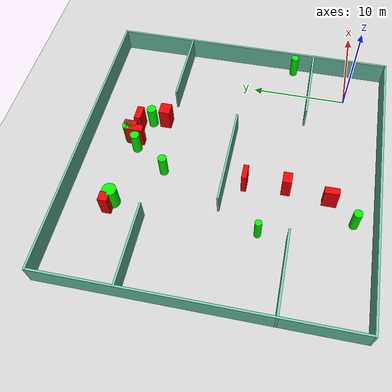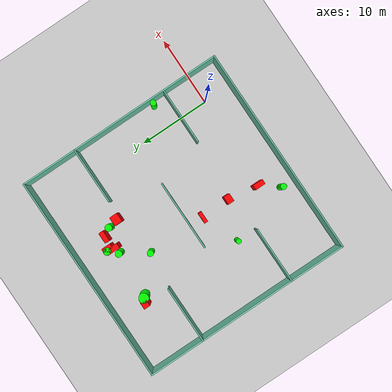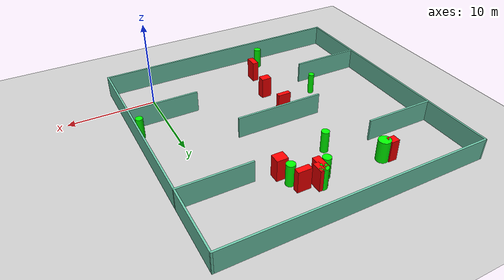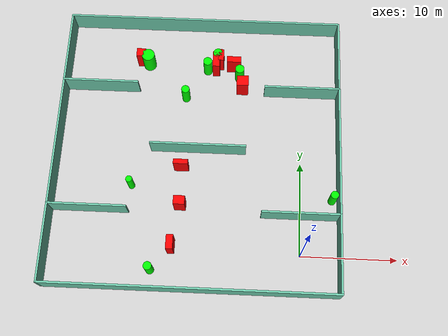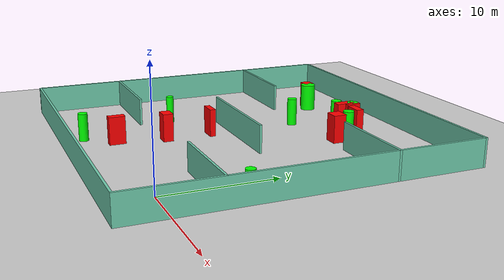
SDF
<sdf version="1.7">
 <world name="default">
  <light name="sun" type="directional">
   <pose>0 0 10 0 -0 0</pose>
   <diffuse>0.8 0.8 0.8 1</diffuse>
   <specular>0.2 0.2 0.2 1</specular>
   <attenuation>
    <range>1000</range>
    <constant>0.9</constant>
    <linear>0.01</linear>
    <quadratic>0.001</quadratic>
   </attenuation>
   <direction>-0.5 0.1 -0.9</direction>
   <spot><inner_angle>0</inner_angle><outer_angle>0</outer_angle><falloff>0</falloff></spot>
  </light>
  <model name="ground_plane">
   <static>1</static>
   <link name="link">
    <collision name="collision">
     <geometry><plane><normal>0 0 1</normal><size>100 100</size></plane></geometry>
     <surface>
      <contact><collide_bitmask>65535</collide_bitmask></contact>
      <friction><ode><mu>100</mu><mu2>50</mu2></ode></friction>
     </surface>
    </collision>
    <visual name="visual">
     <cast_shadows>0</cast_shadows>
     <geometry><plane><normal>0 0 1</normal><size>100 100</size></plane></geometry>
     <material>
      <script><uri>file://media/materials/scripts/gazebo.material</uri><name>Gazebo/Grey</name></script>
     </material>
    </visual>
   </link>
  </model>
  <gravity>0 0 -9.8</gravity>
  <magnetic_field>6e-06 2.3e-05 -4.2e-05</magnetic_field>
  <atmosphere type="adiabatic"/>
  <physics type="ode">
   <max_step_size>0.001</max_step_size>
   <real_time_factor>1</real_time_factor>
   <real_time_update_rate>1000</real_time_update_rate>
  </physics>
  <scene><ambient>0.4 0.4 0.4 1</ambient><background>0.7 0.7 0.7 1</background><shadows>1</shadows></scene>
  <spherical_coordinates>
   <surface_model>EARTH_WGS84</surface_model>
   <latitude_deg>0</latitude_deg>
   <longitude_deg>0</longitude_deg>
   <elevation>0</elevation>
   <heading_deg>0</heading_deg>
  </spherical_coordinates>
  <model name="my_base_walls">
   <link name="Wall_10">
    <collision name="Wall_10_Collision">
     <geometry><box><size>8.2 0.2 2.5</size></box></geometry>
     <pose>0 0 1.25 0 -0 0</pose>
    </collision>
    <visual name="Wall_10_Visual">
     <pose>0 0 1.25 0 -0 0</pose>
     <geometry><box><size>8.2 0.2 2.5</size></box></geometry>
     <material>
      <script><uri>file://media/materials/scripts/gazebo.material</uri><name>Gazebo/Grey</name></script>
      <ambient>0.435294 0.796078 0.67451 1</ambient>
     </material>
     <meta><layer>0</layer></meta>
    </visual>
    <pose>-11 -7 0 0 -0 0</pose>
   </link>
   <link name="Wall_12">
    <collision name="Wall_12_Collision">
     <geometry><box><size>8.2 0.2 2.5</size></box></geometry>
     <pose>0 0 1.25 0 -0 0</pose>
    </collision>
    <visual name="Wall_12_Visual">
     <pose>0 0 1.25 0 -0 0</pose>
     <geometry><box><size>8.2 0.2 2.5</size></box></geometry>
     <material>
      <script><uri>file://media/materials/scripts/gazebo.material</uri><name>Gazebo/Grey</name></script>
      <ambient>0.435294 0.796078 0.67451 1</ambient>
     </material>
     <meta><layer>0</layer></meta>
    </visual>
    <pose>-11 7 0 0 -0 0</pose>
   </link>
   <link name="Wall_14">
    <collision name="Wall_14_Collision">
     <geometry><box><size>8.2 0.2 2.5</size></box></geometry>
     <pose>0 0 1.25 0 -0 0</pose>
    </collision>
    <visual name="Wall_14_Visual">
     <pose>0 0 1.25 0 -0 0</pose>
     <geometry><box><size>8.2 0.2 2.5</size></box></geometry>
     <material>
      <script><uri>file://media/materials/scripts/gazebo.material</uri><name>Gazebo/Grey</name></script>
      <ambient>0.435294 0.796078 0.67451 1</ambient>
     </material>
     <meta><layer>0</layer></meta>
    </visual>
    <pose>11 7 0 0 -0 3.14159</pose>
   </link>
   <link name="Wall_16">
    <collision name="Wall_16_Collision">
     <geometry><box><size>10.2 0.2 2.5</size></box></geometry>
     <pose>0 0 1.25 0 -0 0</pose>
    </collision>
    <visual name="Wall_16_Visual">
     <pose>0 0 1.25 0 -0 0</pose>
     <geometry><box><size>10.2 0.2 2.5</size></box></geometry>
     <material>
      <script><uri>file://media/materials/scripts/gazebo.material</uri><name>Gazebo/Grey</name></script>
      <ambient>0.435294 0.796078 0.67451 1</ambient>
     </material>
     <meta><layer>0</layer></meta>
    </visual>
    <pose>0 0 0 0 -0 3.14159</pose>
   </link>
   <link name="Wall_2">
    <collision name="Wall_2_Collision">
     <geometry><box><size>30.2 0.2 2.5</size></box></geometry>
     <pose>0 0 1.25 0 -0 0</pose>
    </collision>
    <visual name="Wall_2_Visual">
     <pose>0 0 1.25 0 -0 0</pose>
     <geometry><box><size>30.2 0.2 2.5</size></box></geometry>
     <material>
      <script><uri>file://media/materials/scripts/gazebo.material</uri><name>Gazebo/Grey</name></script>
      <ambient>0.435294 0.796078 0.67451 1</ambient>
     </material>
     <meta><layer>0</layer></meta>
    </visual>
    <pose>0 -15 0 0 -0 3.14159</pose>
   </link>
   <link name="Wall_3">
    <collision name="Wall_3_Collision">
     <geometry><box><size>30.2 0.2 2.5</size></box></geometry>
     <pose>0 0 1.25 0 -0 0</pose>
    </collision>
    <visual name="Wall_3_Visual">
     <pose>0 0 1.25 0 -0 0</pose>
     <geometry><box><size>30.2 0.2 2.5</size></box></geometry>
     <material>
      <script><uri>file://media/materials/scripts/gazebo.material</uri><name>Gazebo/Grey</name></script>
      <ambient>0.435294 0.796078 0.67451 1</ambient>
     </material>
     <meta><layer>0</layer></meta>
    </visual>
    <pose>-15 0 0 0 -0 1.5708</pose>
   </link>
   <link name="Wall_4">
    <collision name="Wall_4_Collision">
     <geometry><box><size>30.2 0.2 2.5</size></box></geometry>
     <pose>0 0 1.25 0 -0 0</pose>
    </collision>
    <visual name="Wall_4_Visual">
     <pose>0 0 1.25 0 -0 0</pose>
     <geometry><box><size>30.2 0.2 2.5</size></box></geometry>
     <material>
      <script><uri>file://media/materials/scripts/gazebo.material</uri><name>Gazebo/Grey</name></script>
      <ambient>0.435294 0.796078 0.67451 1</ambient>
     </material>
     <meta><layer>0</layer></meta>
    </visual>
    <pose>0 15 0 0 -0 0</pose>
   </link>
   <link name="Wall_6">
    <collision name="Wall_6_Collision">
     <geometry><box><size>30.2 0.2 2.5</size></box></geometry>
     <pose>0 0 1.25 0 -0 0</pose>
    </collision>
    <visual name="Wall_6_Visual">
     <pose>0 0 1.25 0 -0 0</pose>
     <geometry><box><size>30.2 0.2 2.5</size></box></geometry>
     <material>
      <script><uri>file://media/materials/scripts/gazebo.material</uri><name>Gazebo/Grey</name></script>
      <ambient>0.435294 0.796078 0.67451 1</ambient>
     </material>
     <meta><layer>0</layer></meta>
    </visual>
    <pose>15 0 0 0 -0 1.5708</pose>
   </link>
   <link name="Wall_8">
    <collision name="Wall_8_Collision">
     <geometry><box><size>8.2 0.2 2.5</size></box></geometry>
     <pose>0 0 1.25 0 -0 0</pose>
    </collision>
    <visual name="Wall_8_Visual">
     <pose>0 0 1.25 0 -0 0</pose>
     <geometry><box><size>8.2 0.2 2.5</size></box></geometry>
     <material>
      <script><uri>file://media/materials/scripts/gazebo.material</uri><name>Gazebo/Grey</name></script>
      <ambient>0.435294 0.796078 0.67451 1</ambient>
     </material>
     <meta><layer>0</layer></meta>
    </visual>
    <pose>11 -7 0 0 -0 3.14159</pose>
   </link>
   <static>1</static>
   <pose>-11 11 0 0 -0 0</pose>
  </model>
  <model name="cylinder1">
   <static>1</static>
   <link name="link">
    <inertial>
     <mass>1</mass>
     <inertia><ixx>0.5</ixx><ixy>0</ixy><ixz>0</ixz><iyy>0.5</iyy><iyz>0</iyz><izz>1</izz></inertia>
    </inertial>
    <collision name="collision">
     <geometry><cylinder><radius>0.5125596510257933</radius><length>2.5</length></cylinder></geometry>
    </collision>
    <visual name="visual">
     <geometry><cylinder><radius>0.5125596510257933</radius><length>2.5</length></cylinder></geometry>
     <material>
      <ambient>0 1 0 1</ambient>
      <diffuse>0 1 0 1</diffuse>
      <specular>0.1 0.1 0.1 1</specular>
      <emissive>0 0 0 0</emissive>
     </material>
    </visual>
   </link>
   <pose>-9.35697218456555 21.859383197241925 1.25 0 0 0</pose>
  </model>
  <model name="cylinder2">
   <static>1</static>
   <link name="link">
    <inertial>
     <mass>1</mass>
     <inertia><ixx>0.5</ixx><ixy>0</ixy><ixz>0</ixz><iyy>0.5</iyy><iyz>0</iyz><izz>1</izz></inertia>
    </inertial>
    <collision name="collision">
     <geometry><cylinder><radius>0.340870593097794</radius><length>2.5</length></cylinder></geometry>
    </collision>
    <visual name="visual">
     <geometry><cylinder><radius>0.340870593097794</radius><length>2.5</length></cylinder></geometry>
     <material>
      <ambient>0 1 0 1</ambient>
      <diffuse>0 1 0 1</diffuse>
      <specular>0.1 0.1 0.1 1</specular>
      <emissive>0 0 0 0</emissive>
     </material>
    </visual>
   </link>
   <pose>-17.859849087504546 6.859270859469932 1.25 0 0 0</pose>
  </model>
  <model name="cylinder3">
   <static>1</static>
   <link name="link">
    <inertial>
     <mass>1</mass>
     <inertia><ixx>0.5</ixx><ixy>0</ixy><ixz>0</ixz><iyy>0.5</iyy><iyz>0</iyz><izz>1</izz></inertia>
    </inertial>
    <collision name="collision">
     <geometry><cylinder><radius>0.6956088929190136</radius><length>2.5</length></cylinder></geometry>
    </collision>
    <visual name="visual">
     <geometry><cylinder><radius>0.6956088929190136</radius><length>2.5</length></cylinder></geometry>
     <material>
      <ambient>0 1 0 1</ambient>
      <diffuse>0 1 0 1</diffuse>
      <specular>0.1 0.1 0.1 1</specular>
      <emissive>0 0 0 0</emissive>
     </material>
    </visual>
   </link>
   <pose>-17.07907983545709 21.30029065823362 1.25 0 0 0</pose>
  </model>
  <model name="cylinder4">
   <static>1</static>
   <link name="link">
    <inertial>
     <mass>1</mass>
     <inertia><ixx>0.5</ixx><ixy>0</ixy><ixz>0</ixz><iyy>0.5</iyy><iyz>0</iyz><izz>1</izz></inertia>
    </inertial>
    <collision name="collision">
     <geometry><cylinder><radius>0.409708016646003</radius><length>2.5</length></cylinder></geometry>
    </collision>
    <visual name="visual">
     <geometry><cylinder><radius>0.409708016646003</radius><length>2.5</length></cylinder></geometry>
     <material>
      <ambient>0 1 0 1</ambient>
      <diffuse>0 1 0 1</diffuse>
      <specular>0.1 0.1 0.1 1</specular>
      <emissive>0 0 0 0</emissive>
     </material>
    </visual>
   </link>
   <pose>3.376506875819672 6.023751350215132 1.25 0 0 0</pose>
  </model>
  <model name="cylinder5">
   <static>1</static>
   <link name="link">
    <inertial>
     <mass>1</mass>
     <inertia><ixx>0.5</ixx><ixy>0</ixy><ixz>0</ixz><iyy>0.5</iyy><iyz>0</iyz><izz>1</izz></inertia>
    </inertial>
    <collision name="collision">
     <geometry><cylinder><radius>0.47822027517702637</radius><length>2.5</length></cylinder></geometry>
    </collision>
    <visual name="visual">
     <geometry><cylinder><radius>0.47822027517702637</radius><length>2.5</length></cylinder></geometry>
     <material>
      <ambient>0 1 0 1</ambient>
      <diffuse>0 1 0 1</diffuse>
      <specular>0.1 0.1 0.1 1</specular>
      <emissive>0 0 0 0</emissive>
     </material>
    </visual>
   </link>
   <pose>-10.448697306928928 20.77603015748252 1.25 0 0 0</pose>
  </model>
  <model name="cylinder6">
   <static>1</static>
   <link name="link">
    <inertial>
     <mass>1</mass>
     <inertia><ixx>0.5</ixx><ixy>0</ixy><ixz>0</ixz><iyy>0.5</iyy><iyz>0</iyz><izz>1</izz></inertia>
    </inertial>
    <collision name="collision">
     <geometry><cylinder><radius>0.42483934545640056</radius><length>2.5</length></cylinder></geometry>
    </collision>
    <visual name="visual">
     <geometry><cylinder><radius>0.42483934545640056</radius><length>2.5</length></cylinder></geometry>
     <material>
      <ambient>0 1 0 1</ambient>
      <diffuse>0 1 0 1</diffuse>
      <specular>0.1 0.1 0.1 1</specular>
      <emissive>0 0 0 0</emissive>
     </material>
    </visual>
   </link>
   <pose>-15.199338144606584 -1.9996565766893726 1.25 0 0 0</pose>
  </model>
  <model name="cylinder7">
   <static>1</static>
   <link name="link">
    <inertial>
     <mass>1</mass>
     <inertia><ixx>0.5</ixx><ixy>0</ixy><ixz>0</ixz><iyy>0.5</iyy><iyz>0</iyz><izz>1</izz></inertia>
    </inertial>
    <collision name="collision">
     <geometry><cylinder><radius>0.4891122345369534</radius><length>2.5</length></cylinder></geometry>
    </collision>
    <visual name="visual">
     <geometry><cylinder><radius>0.4891122345369534</radius><length>2.5</length></cylinder></geometry>
     <material>
      <ambient>0 1 0 1</ambient>
      <diffuse>0 1 0 1</diffuse>
      <specular>0.1 0.1 0.1 1</specular>
      <emissive>0 0 0 0</emissive>
     </material>
    </visual>
   </link>
   <pose>-6.8770571448233735 19.991335464267674 1.25 0 0 0</pose>
  </model>
  <model name="cylinder8">
   <static>1</static>
   <link name="link">
    <inertial>
     <mass>1</mass>
     <inertia><ixx>0.5</ixx><ixy>0</ixy><ixz>0</ixz><iyy>0.5</iyy><iyz>0</iyz><izz>1</izz></inertia>
    </inertial>
    <collision name="collision">
     <geometry><cylinder><radius>0.43929843390527995</radius><length>2.5</length></cylinder></geometry>
    </collision>
    <visual name="visual">
     <geometry><cylinder><radius>0.43929843390527995</radius><length>2.5</length></cylinder></geometry>
     <material>
      <ambient>0 1 0 1</ambient>
      <diffuse>0 1 0 1</diffuse>
      <specular>0.1 0.1 0.1 1</specular>
      <emissive>0 0 0 0</emissive>
     </material>
    </visual>
   </link>
   <pose>-12.693460546372878 17.296545193550696 1.25 0 0 0</pose>
  </model>
  <model name="box1">
   <static>1</static>
   <link name="link">
    <inertial>
     <mass>1</mass>
     <inertia><ixx>0.083</ixx><ixy>0</ixy><ixz>0</ixz><iyy>0.083</iyy><iyz>0</iyz><izz>0.083</izz></inertia>
    </inertial>
    <collision name="collision">
     <geometry><box><size>0.6261992789970503 1.3124341730029516 2.5</size></box></geometry>
    </collision>
    <visual name="visual">
     <geometry><box><size>0.6261992789970503 1.3124341730029516 2.5</size></box></geometry>
     <material>
      <ambient>1 0 0 1</ambient>
      <diffuse>1 0 0 1</diffuse>
      <specular>0.1 0.1 0.1 1</specular>
      <emissive>0 0 0 0</emissive>
     </material>
    </visual>
    <sensor name="my_contact" type="contact">
     <contact><collision>box_collision</collision><topic>__default_topic__</topic></contact>
    </sensor>
   </link>
   <pose>-9.010432847197743 21.64956757658688 1.25 0 0 0</pose>
  </model>
  <model name="box2">
   <static>1</static>
   <link name="link">
    <inertial>
     <mass>1</mass>
     <inertia><ixx>0.083</ixx><ixy>0</ixy><ixz>0</ixz><iyy>0.083</iyy><iyz>0</iyz><izz>0.083</izz></inertia>
    </inertial>
    <collision name="collision">
     <geometry><box><size>0.9706674046994161 0.9121617210655525 2.5</size></box></geometry>
    </collision>
    <visual name="visual">
     <geometry><box><size>0.9706674046994161 0.9121617210655525 2.5</size></box></geometry>
     <material>
      <ambient>1 0 0 1</ambient>
      <diffuse>1 0 0 1</diffuse>
      <specular>0.1 0.1 0.1 1</specular>
      <emissive>0 0 0 0</emissive>
     </material>
    </visual>
    <sensor name="my_contact" type="contact">
     <contact><collision>box_collision</collision><topic>__default_topic__</topic></contact>
    </sensor>
   </link>
   <pose>-17.875184644404726 21.592043362666487 1.25 0 0 0</pose>
  </model>
  <model name="box3">
   <static>1</static>
   <link name="link">
    <inertial>
     <mass>1</mass>
     <inertia><ixx>0.083</ixx><ixy>0</ixy><ixz>0</ixz><iyy>0.083</iyy><iyz>0</iyz><izz>0.083</izz></inertia>
    </inertial>
    <collision name="collision">
     <geometry><box><size>1.1780784824438428 0.9110918069415695 2.5</size></box></geometry>
    </collision>
    <visual name="visual">
     <geometry><box><size>1.1780784824438428 0.9110918069415695 2.5</size></box></geometry>
     <material>
      <ambient>1 0 0 1</ambient>
      <diffuse>1 0 0 1</diffuse>
      <specular>0.1 0.1 0.1 1</specular>
      <emissive>0 0 0 0</emissive>
     </material>
    </visual>
    <sensor name="my_contact" type="contact">
     <contact><collision>box_collision</collision><topic>__default_topic__</topic></contact>
    </sensor>
   </link>
   <pose>-12.552658632014904 4.849322797187219 1.25 0 0 0</pose>
  </model>
  <model name="box4">
   <static>1</static>
   <link name="link">
    <inertial>
     <mass>1</mass>
     <inertia><ixx>0.083</ixx><ixy>0</ixy><ixz>0</ixz><iyy>0.083</iyy><iyz>0</iyz><izz>0.083</izz></inertia>
    </inertial>
    <collision name="collision">
     <geometry><box><size>1.541067098731428 0.512225518189429 2.5</size></box></geometry>
    </collision>
    <visual name="visual">
     <geometry><box><size>1.541067098731428 0.512225518189429 2.5</size></box></geometry>
     <material>
      <ambient>1 0 0 1</ambient>
      <diffuse>1 0 0 1</diffuse>
      <specular>0.1 0.1 0.1 1</specular>
      <emissive>0 0 0 0</emissive>
     </material>
    </visual>
    <sensor name="my_contact" type="contact">
     <contact><collision>box_collision</collision><topic>__default_topic__</topic></contact>
    </sensor>
   </link>
   <pose>-12.672021692756537 8.994945878568018 1.25 0 0 0</pose>
  </model>
  <model name="box5">
   <static>1</static>
   <link name="link">
    <inertial>
     <mass>1</mass>
     <inertia><ixx>0.083</ixx><ixy>0</ixy><ixz>0</ixz><iyy>0.083</iyy><iyz>0</iyz><izz>0.083</izz></inertia>
    </inertial>
    <collision name="collision">
     <geometry><box><size>1.5448550468582076 0.6806973713155889 2.5</size></box></geometry>
    </collision>
    <visual name="visual">
     <geometry><box><size>1.5448550468582076 0.6806973713155889 2.5</size></box></geometry>
     <material>
      <ambient>1 0 0 1</ambient>
      <diffuse>1 0 0 1</diffuse>
      <specular>0.1 0.1 0.1 1</specular>
      <emissive>0 0 0 0</emissive>
     </material>
    </visual>
    <sensor name="my_contact" type="contact">
     <contact><collision>box_collision</collision><topic>__default_topic__</topic></contact>
    </sensor>
   </link>
   <pose>-7.5609266560676485 21.139573583838693 1.25 0 0 0</pose>
  </model>
  <model name="box6">
   <static>1</static>
   <link name="link">
    <inertial>
     <mass>1</mass>
     <inertia><ixx>0.083</ixx><ixy>0</ixy><ixz>0</ixz><iyy>0.083</iyy><iyz>0</iyz><izz>0.083</izz></inertia>
    </inertial>
    <collision name="collision">
     <geometry><box><size>0.702797629347429 1.460981550281673 2.5</size></box></geometry>
    </collision>
    <visual name="visual">
     <geometry><box><size>0.702797629347429 1.460981550281673 2.5</size></box></geometry>
     <material>
      <ambient>1 0 0 1</ambient>
      <diffuse>1 0 0 1</diffuse>
      <specular>0.1 0.1 0.1 1</specular>
      <emissive>0 0 0 0</emissive>
     </material>
    </visual>
    <sensor name="my_contact" type="contact">
     <contact><collision>box_collision</collision><topic>__default_topic__</topic></contact>
    </sensor>
   </link>
   <pose>-13.21856490152539 0.5134361671926979 1.25 0 0 0</pose>
  </model>
  <model name="box7">
   <static>1</static>
   <link name="link">
    <inertial>
     <mass>1</mass>
     <inertia><ixx>0.083</ixx><ixy>0</ixy><ixz>0</ixz><iyy>0.083</iyy><iyz>0</iyz><izz>0.083</izz></inertia>
    </inertial>
    <collision name="collision">
     <geometry><box><size>0.769460344443367 1.8050961256621596 2.5</size></box></geometry>
    </collision>
    <visual name="visual">
     <geometry><box><size>0.769460344443367 1.8050961256621596 2.5</size></box></geometry>
     <material>
      <ambient>1 0 0 1</ambient>
      <diffuse>1 0 0 1</diffuse>
      <specular>0.1 0.1 0.1 1</specular>
      <emissive>0 0 0 0</emissive>
     </material>
    </visual>
    <sensor name="my_contact" type="contact">
     <contact><collision>box_collision</collision><topic>__default_topic__</topic></contact>
    </sensor>
   </link>
   <pose>-9.506835768795694 21.130393816599803 1.25 0 0 0</pose>
  </model>
  <model name="box8">
   <static>1</static>
   <link name="link">
    <inertial>
     <mass>1</mass>
     <inertia><ixx>0.083</ixx><ixy>0</ixy><ixz>0</ixz><iyy>0.083</iyy><iyz>0</iyz><izz>0.083</izz></inertia>
    </inertial>
    <collision name="collision">
     <geometry><box><size>1.276107209456578 1.1525270944281283 2.5</size></box></geometry>
    </collision>
    <visual name="visual">
     <geometry><box><size>1.276107209456578 1.1525270944281283 2.5</size></box></geometry>
     <material>
      <ambient>1 0 0 1</ambient>
      <diffuse>1 0 0 1</diffuse>
      <specular>0.1 0.1 0.1 1</specular>
      <emissive>0 0 0 0</emissive>
     </material>
    </visual>
    <sensor name="my_contact" type="contact">
     <contact><collision>box_collision</collision><topic>__default_topic__</topic></contact>
    </sensor>
   </link>
   <pose>-6.5156436229236405 18.589865490188945 1.25 0 0 0</pose>
  </model>
 </world>
</sdf>
